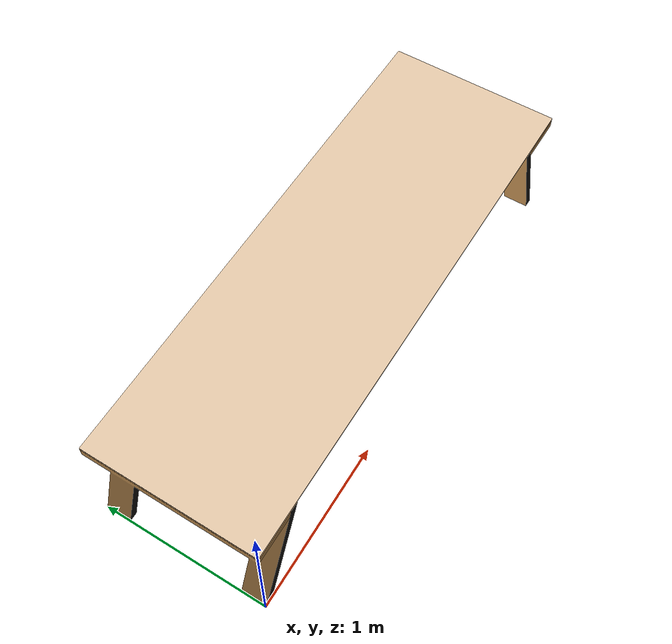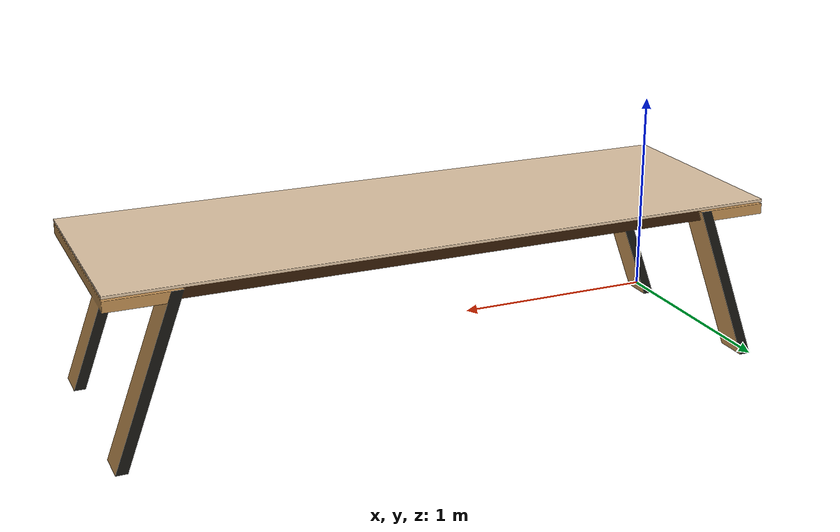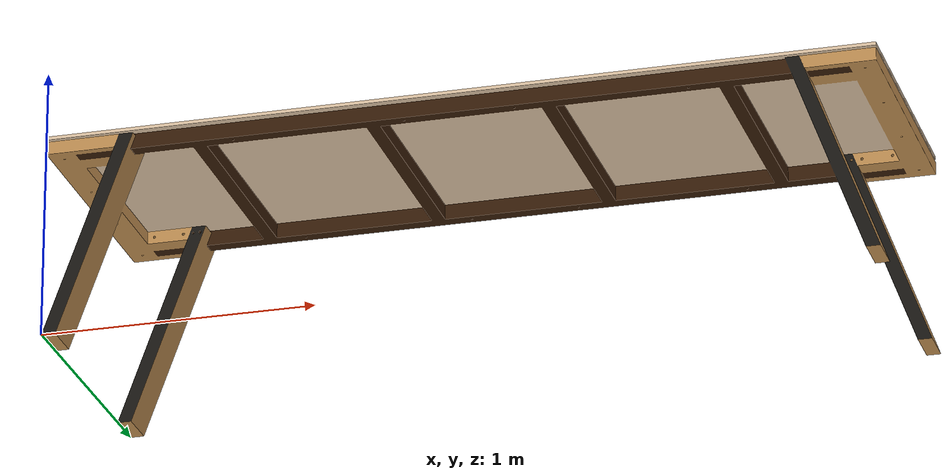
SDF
<?xml version="1.0"?>

<sdf version="1.4">
    <model name="table">
        <static>true</static>
        <link name="table_link">

            <visual name="table_mesh">
                <geometry>
                    <mesh>
                        <uri>model://table/meshes/model.dae</uri>
                    </mesh>
                </geometry>
            </visual>

            <collision name="table_collison">
                <pose>1.512611 0.491706 0.367172 0 0 0 </pose>
                <geometry>
                    <box>
                        <size>3.046340 1.004740 0.805770</size>
                    </box>
                </geometry>
            </collision>

        </link>
    </model>
</sdf>
